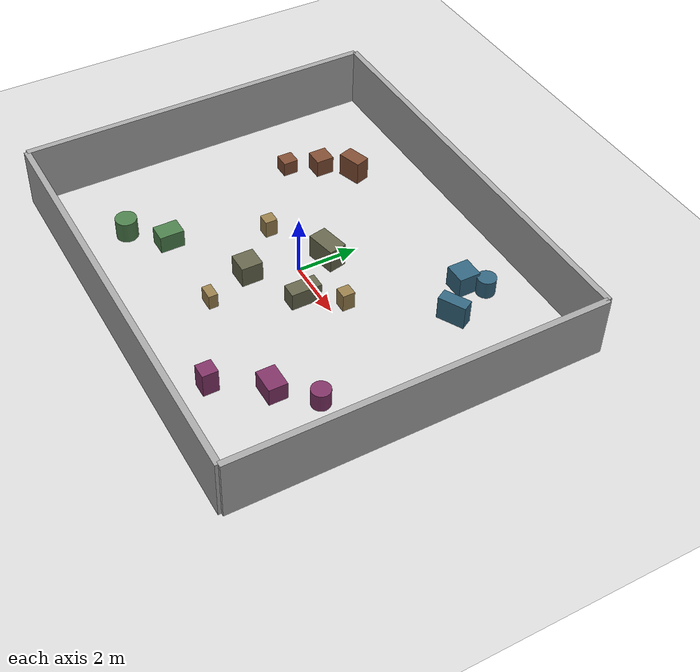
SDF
<?xml version="1.0"?>
<sdf version="1.9">
  <world name="static_clutter">
    <gravity>0 0 -9.8</gravity>
    <plugin filename="ignition-gazebo-physics-system" name="ignition::gazebo::systems::Physics"/>
    <plugin filename="ignition-gazebo-scene-broadcaster-system" name="ignition::gazebo::systems::SceneBroadcaster"/>
    <plugin filename="ignition-gazebo-user-commands-system" name="ignition::gazebo::systems::UserCommands"/>
    <plugin filename="ignition-gazebo-sensors-system" name="ignition::gazebo::systems::Sensors">
      <render_engine>ogre2</render_engine>
    </plugin>

    <light name="sun" type="directional">
      <pose>0 0 10 0 0 0</pose>
      <visualize>false</visualize>
      <diffuse>0.8 0.8 0.8 1</diffuse>
      <direction>-0.5 0.1 -0.9</direction>
    </light>

    <model name="ground_plane">
      <static>true</static>
      <link name="link">
        <collision name="collision"><geometry><plane><normal>0 0 1</normal><size>20 20</size></plane></geometry></collision>
        <visual name="visual"><geometry><plane><normal>0 0 1</normal><size>20 20</size></plane></geometry><material><diffuse>0.85 0.85 0.85 1</diffuse></material></visual>
      </link>
    </model>

    <!-- 外墙 -->
    <model name="wall_north"><static>true</static><pose>0 6 1 0 0 0</pose><link name="link"><collision name="c"><geometry><box><size>14 0.2 2</size></box></geometry></collision><visual name="v"><geometry><box><size>14 0.2 2</size></box></geometry><material><diffuse>0.65 0.65 0.65 1</diffuse></material></visual></link></model>
    <model name="wall_south"><static>true</static><pose>0 -6 1 0 0 0</pose><link name="link"><collision name="c"><geometry><box><size>14 0.2 2</size></box></geometry></collision><visual name="v"><geometry><box><size>14 0.2 2</size></box></geometry><material><diffuse>0.65 0.65 0.65 1</diffuse></material></visual></link></model>
    <model name="wall_east"><static>true</static><pose>7 0 1 0 0 0</pose><link name="link"><collision name="c"><geometry><box><size>0.2 12 2</size></box></geometry></collision><visual name="v"><geometry><box><size>0.2 12 2</size></box></geometry><material><diffuse>0.65 0.65 0.65 1</diffuse></material></visual></link></model>
    <model name="wall_west"><static>true</static><pose>-7 0 1 0 0 0</pose><link name="link"><collision name="c"><geometry><box><size>0.2 12 2</size></box></geometry></collision><visual name="v"><geometry><box><size>0.2 12 2</size></box></geometry><material><diffuse>0.65 0.65 0.65 1</diffuse></material></visual></link></model>

    <!-- 散布的障碍物群 A (左上) -->
    <model name="box_a1"><static>true</static><pose>-4 3 0.3 0 0 0</pose><link name="link"><collision name="c"><geometry><box><size>0.6 0.6 0.6</size></box></geometry></collision><visual name="v"><geometry><box><size>0.6 0.6 0.6</size></box></geometry><material><diffuse>0.5 0.3 0.2 1</diffuse></material></visual></link></model>
    <model name="box_a2"><static>true</static><pose>-3.2 3.8 0.4 0 0 0.3</pose><link name="link"><collision name="c"><geometry><box><size>0.8 0.5 0.8</size></box></geometry></collision><visual name="v"><geometry><box><size>0.8 0.5 0.8</size></box></geometry><material><diffuse>0.5 0.3 0.2 1</diffuse></material></visual></link></model>
    <model name="box_a3"><static>true</static><pose>-4.5 2 0.25 0  0 0</pose><link name="link"><collision name="c"><geometry><box><size>0.5 0.5 0.5</size></box></geometry></collision><visual name="v"><geometry><box><size>0.5 0.5 0.5</size></box></geometry><material><diffuse>0.5 0.3 0.2 1</diffuse></material></visual></link></model>

    <!-- 散布的障碍物群 B (右上) -->
    <model name="box_b1"><static>true</static><pose>3 4 0.35 0 0 0</pose><link name="link"><collision name="c"><geometry><box><size>0.7 0.7 0.7</size></box></geometry></collision><visual name="v"><geometry><box><size>0.7 0.7 0.7</size></box></geometry><material><diffuse>0.2 0.4 0.5 1</diffuse></material></visual></link></model>
    <model name="box_b2"><static>true</static><pose>4 3 0.4 0 0 0.5</pose><link name="link"><collision name="c"><geometry><box><size>0.9 0.4 0.8</size></box></geometry></collision><visual name="v"><geometry><box><size>0.9 0.4 0.8</size></box></geometry><material><diffuse>0.2 0.4 0.5 1</diffuse></material></visual></link></model>
    <model name="cyl_b1"><static>true</static><pose>3.5 4.5 0.3 0 0 0</pose><link name="link"><collision name="c"><geometry><cylinder><radius>0.3</radius><length>0.6</length></cylinder></geometry></collision><visual name="v"><geometry><cylinder><radius>0.3</radius><length>0.6</length></cylinder></geometry><material><diffuse>0.2 0.4 0.5 1</diffuse></material></visual></link></model>

    <!-- 散布的障碍物群 C (中央) -->
    <model name="box_c1"><static>true</static><pose>0 1 0.4 0 0 0.2</pose><link name="link"><collision name="c"><geometry><box><size>1.0 0.6 0.8</size></box></geometry></collision><visual name="v"><geometry><box><size>1.0 0.6 0.8</size></box></geometry><material><diffuse>0.4 0.4 0.3 1</diffuse></material></visual></link></model>
    <model name="box_c2"><static>true</static><pose>-0.5 -1.5 0.35 0 0 0</pose><link name="link"><collision name="c"><geometry><box><size>0.7 0.7 0.7</size></box></geometry></collision><visual name="v"><geometry><box><size>0.7 0.7 0.7</size></box></geometry><material><diffuse>0.4 0.4 0.3 1</diffuse></material></visual></link></model>
    <model name="box_c3"><static>true</static><pose>1.2 -0.5 0.3 0 0 0</pose><link name="link"><collision name="c"><geometry><box><size>0.5 1.0 0.6</size></box></geometry></collision><visual name="v"><geometry><box><size>0.5 1.0 0.6</size></box></geometry><material><diffuse>0.4 0.4 0.3 1</diffuse></material></visual></link></model>

    <!-- 散布的障碍物群 D (左下) -->
    <model name="box_d1"><static>true</static><pose>-3 -3 0.3 0 0 0</pose><link name="link"><collision name="c"><geometry><box><size>0.6 0.8 0.6</size></box></geometry></collision><visual name="v"><geometry><box><size>0.6 0.8 0.6</size></box></geometry><material><diffuse>0.3 0.5 0.3 1</diffuse></material></visual></link></model>
    <model name="cyl_d1"><static>true</static><pose>-4 -4 0.35 0 0 0</pose><link name="link"><collision name="c"><geometry><cylinder><radius>0.35</radius><length>0.7</length></cylinder></geometry></collision><visual name="v"><geometry><cylinder><radius>0.35</radius><length>0.7</length></cylinder></geometry><material><diffuse>0.3 0.5 0.3 1</diffuse></material></visual></link></model>

    <!-- 散布的障碍物群 E (右下) -->
    <model name="box_e1"><static>true</static><pose>4 -3 0.3 0 0 0</pose><link name="link"><collision name="c"><geometry><box><size>0.8 0.6 0.6</size></box></geometry></collision><visual name="v"><geometry><box><size>0.8 0.6 0.6</size></box></geometry><material><diffuse>0.5 0.2 0.4 1</diffuse></material></visual></link></model>
    <model name="box_e2"><static>true</static><pose>3 -4.5 0.4 0 0 0</pose><link name="link"><collision name="c"><geometry><box><size>0.5 0.5 0.8</size></box></geometry></collision><visual name="v"><geometry><box><size>0.5 0.5 0.8</size></box></geometry><material><diffuse>0.5 0.2 0.4 1</diffuse></material></visual></link></model>
    <model name="cyl_e1"><static>true</static><pose>5 -2 0.3 0 0 0</pose><link name="link"><collision name="c"><geometry><cylinder><radius>0.3</radius><length>0.6</length></cylinder></geometry></collision><visual name="v"><geometry><cylinder><radius>0.3</radius><length>0.6</length></cylinder></geometry><material><diffuse>0.5 0.2 0.4 1</diffuse></material></visual></link></model>

    <!-- 通道障碍物 -->
    <model name="box_f1"><static>true</static><pose>-2 0 0.3 0 0 0</pose><link name="link"><collision name="c"><geometry><box><size>0.4 0.4 0.6</size></box></geometry></collision><visual name="v"><geometry><box><size>0.4 0.4 0.6</size></box></geometry><material><diffuse>0.6 0.5 0.3 1</diffuse></material></visual></link></model>
    <model name="box_f2"><static>true</static><pose>2 0.5 0.3 0 0 0</pose><link name="link"><collision name="c"><geometry><box><size>0.4 0.4 0.6</size></box></geometry></collision><visual name="v"><geometry><box><size>0.4 0.4 0.6</size></box></geometry><material><diffuse>0.6 0.5 0.3 1</diffuse></material></visual></link></model>
    <model name="box_f3"><static>true</static><pose>0 -3 0.25 0 0 0</pose><link name="link"><collision name="c"><geometry><box><size>0.5 0.3 0.5</size></box></geometry></collision><visual name="v"><geometry><box><size>0.5 0.3 0.5</size></box></geometry><material><diffuse>0.6 0.5 0.3 1</diffuse></material></visual></link></model>
  </world>
</sdf>
